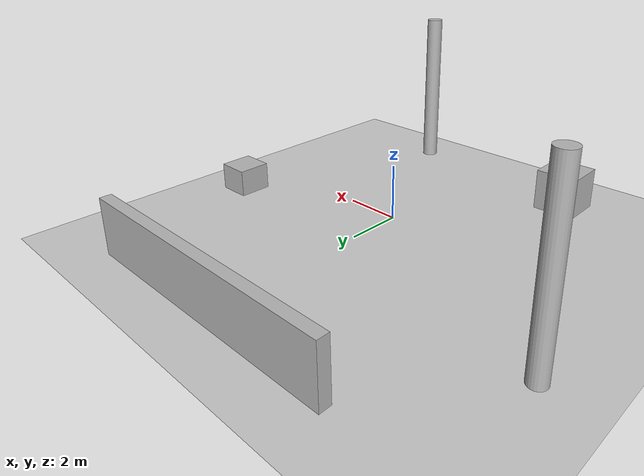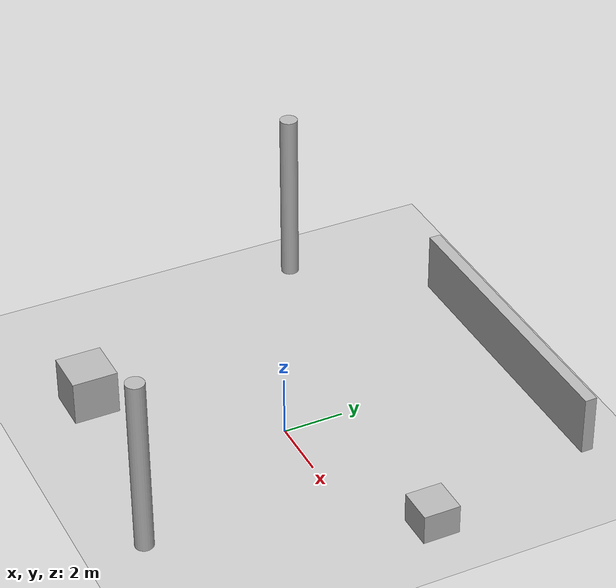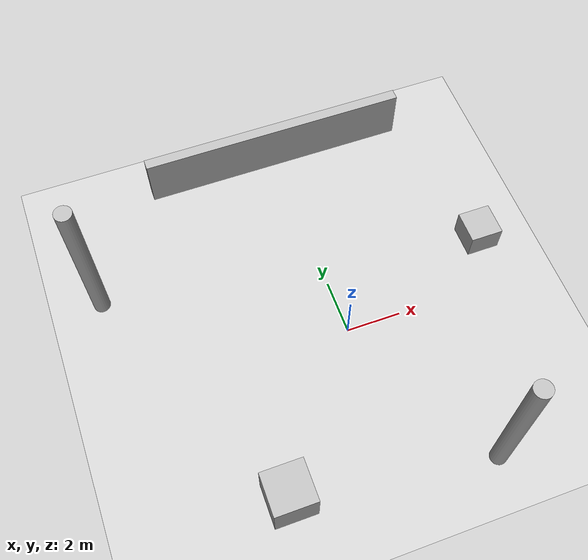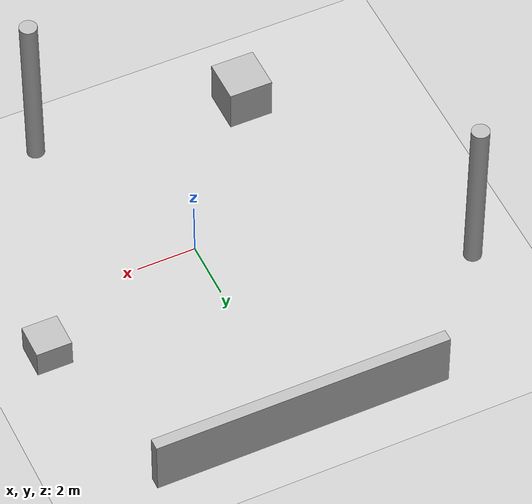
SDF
<?xml version="1.0" ?>
<sdf version="1.5">
  <world name="default">
    <include><uri>model://sun</uri></include>
    <include><uri>model://ground_plane</uri></include>
    <include><uri>model://asphalt_plane</uri></include>

    <!-- Rock 1 -->
    <model name="rock_1">
      <static>true</static>
      <pose>6 2 0.5 0 0 0</pose>
      <link name="link">
        <collision name="c"><geometry><box><size>1.2 1.2 1.0</size></box></geometry></collision>
        <visual name="v"><geometry><box><size>1.2 1.2 1.0</size></box></geometry></visual>
      </link>
    </model>

    <!-- Rock 2 -->
    <model name="rock_2">
      <static>true</static>
      <pose>-4 -5 0.75 0 0 0</pose>
      <link name="link">
        <collision name="c"><geometry><box><size>1.5 1.5 1.5</size></box></geometry></collision>
        <visual name="v"><geometry><box><size>1.5 1.5 1.5</size></box></geometry></visual>
      </link>
    </model>

    <!-- Tree trunk 1 -->
    <model name="tree_1">
      <static>true</static>
      <pose>3 -6 3 0 0 0</pose>
      <link name="link">
        <collision name="c"><geometry><cylinder><radius>0.3</radius><length>6</length></cylinder></geometry></collision>
        <visual name="v"><geometry><cylinder><radius>0.3</radius><length>6</length></cylinder></geometry></visual>
      </link>
    </model>

    <!-- Tree trunk 2 -->
    <model name="tree_2">
      <static>true</static>
      <pose>-8 4 3 0 0 0</pose>
      <link name="link">
        <collision name="c"><geometry><cylinder><radius>0.3</radius><length>6</length></cylinder></geometry></collision>
        <visual name="v"><geometry><cylinder><radius>0.3</radius><length>6</length></cylinder></geometry></visual>
      </link>
    </model>

    <!-- Low wall -->
    <model name="wall_1">
      <static>true</static>
      <pose>0 8 1 0 0 0</pose>
      <link name="link">
        <collision name="c"><geometry><box><size>10 0.4 2</size></box></geometry></collision>
        <visual name="v"><geometry><box><size>10 0.4 2</size></box></geometry></visual>
      </link>
    </model>

    <physics name='default_physics' default='0' type='ode'>
      <gravity>0 0 -9.8066</gravity>
      <max_step_size>0.004</max_step_size>
      <real_time_factor>1</real_time_factor>
      <real_time_update_rate>250</real_time_update_rate>
    </physics>
  </world>
</sdf>
